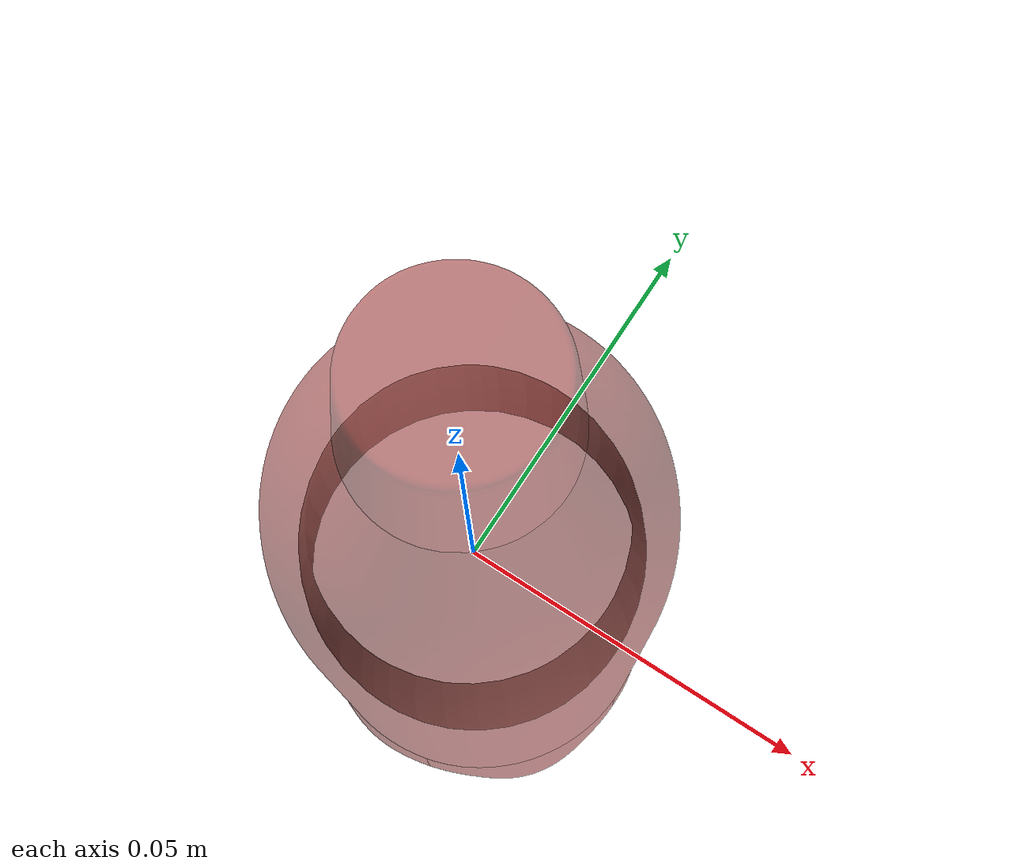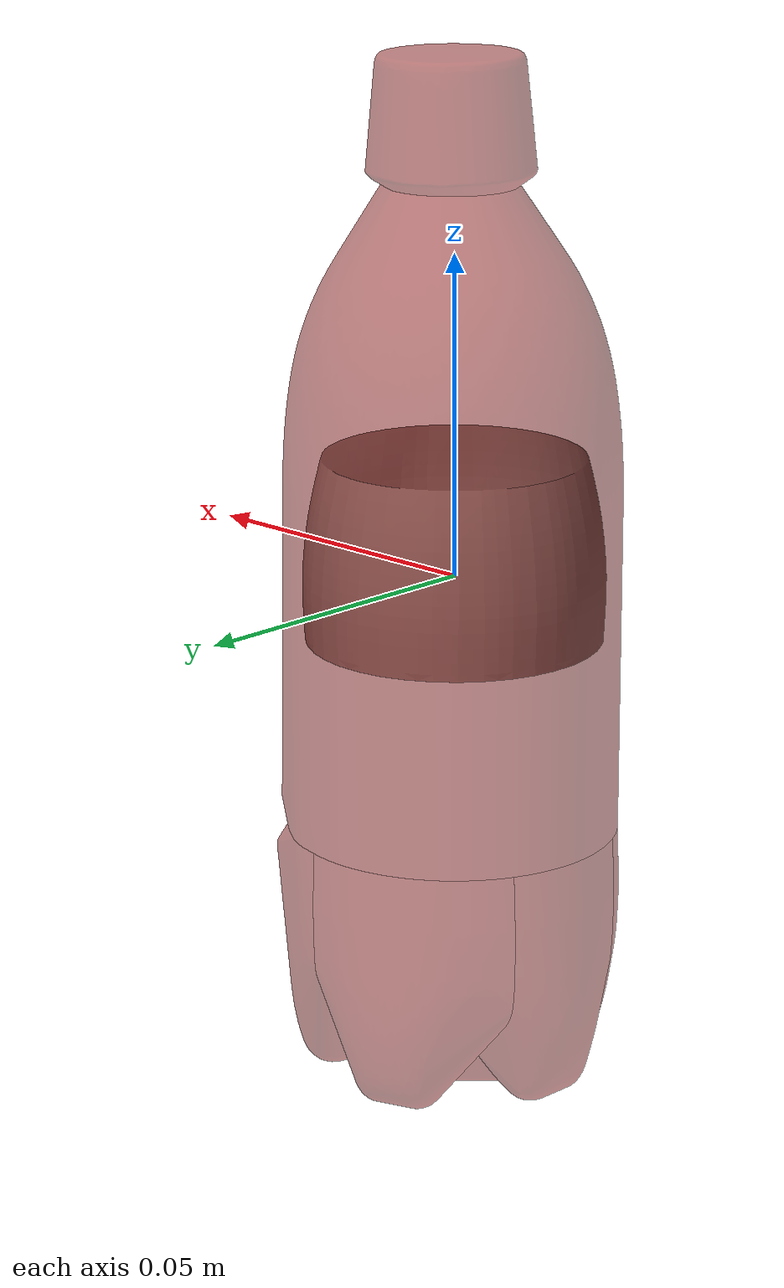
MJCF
<mujoco model="bottled_drink_16">
  <asset>
    <mesh file="visual/model_normalized_0.obj" name="model_normalized_0_vis" scale="0.15999999999999998 0.15999999999999998 0.15999999999999998" refquat="1.0 0.0 0.0 0.0"/>
    <texture type="2d" name="image0" file="visual/image0.png"/>
    <material name="texture.001" texture="image0" specular="0.5" shininess="0.359999993"/>
    <mesh file="collision/collision_mesh_collision_0.obj" name="bottled_collision_mesh_0" scale="0.15999999999999998 0.15999999999999998 0.15999999999999998" refquat="1.0 0.0 0.0 0.0"/>
    <mesh file="collision/collision_mesh_collision_1.obj" name="bottled_collision_mesh_1" scale="0.15999999999999998 0.15999999999999998 0.15999999999999998" refquat="1.0 0.0 0.0 0.0"/>
    <mesh file="collision/collision_mesh_collision_2.obj" name="bottled_collision_mesh_2" scale="0.15999999999999998 0.15999999999999998 0.15999999999999998" refquat="1.0 0.0 0.0 0.0"/>
    <mesh file="collision/collision_mesh_collision_3.obj" name="bottled_collision_mesh_3" scale="0.15999999999999998 0.15999999999999998 0.15999999999999998" refquat="1.0 0.0 0.0 0.0"/>
    <mesh file="collision/collision_mesh_collision_4.obj" name="bottled_collision_mesh_4" scale="0.15999999999999998 0.15999999999999998 0.15999999999999998" refquat="1.0 0.0 0.0 0.0"/>
    <mesh file="collision/collision_mesh_collision_5.obj" name="bottled_collision_mesh_5" scale="0.15999999999999998 0.15999999999999998 0.15999999999999998" refquat="1.0 0.0 0.0 0.0"/>
    <mesh file="collision/collision_mesh_collision_6.obj" name="bottled_collision_mesh_6" scale="0.15999999999999998 0.15999999999999998 0.15999999999999998" refquat="1.0 0.0 0.0 0.0"/>
    <mesh file="collision/collision_mesh_collision_7.obj" name="bottled_collision_mesh_7" scale="0.15999999999999998 0.15999999999999998 0.15999999999999998" refquat="1.0 0.0 0.0 0.0"/>
  </asset>
  <default>
    <default class="region">
      <geom group="1" conaffinity="0" contype="0" rgba="0 1 0 0"/>
    </default>
    <default class="collision">
      <geom group="0" rgba="0.5 0 0 0.5" density="1000.0"/>
    </default>
  </default>
  <worldbody>
    <body>
      <body name="object">
        <geom solimp="0.998 0.998 0.001" solref="0.001 1" density="100" friction="0.95 0.3 0.1" type="mesh" mesh="model_normalized_0_vis" conaffinity="0" contype="0" group="1" material="texture.001"/>
        <geom class="region" name="reg_bbox" type="box" pos="8.000000017993613e-10 0.0 0.0" size="0.026358731999999992 0.025956563199999994 0.07999999999999999"/>
        <geom mesh="bottled_collision_mesh_0" type="mesh" class="collision"/>
        <geom mesh="bottled_collision_mesh_1" type="mesh" class="collision"/>
        <geom mesh="bottled_collision_mesh_2" type="mesh" class="collision"/>
        <geom mesh="bottled_collision_mesh_3" type="mesh" class="collision"/>
        <geom mesh="bottled_collision_mesh_4" type="mesh" class="collision"/>
        <geom mesh="bottled_collision_mesh_5" type="mesh" class="collision"/>
        <geom mesh="bottled_collision_mesh_6" type="mesh" class="collision"/>
        <geom mesh="bottled_collision_mesh_7" type="mesh" class="collision"/>
      </body>
    </body>
  </worldbody>
</mujoco>
